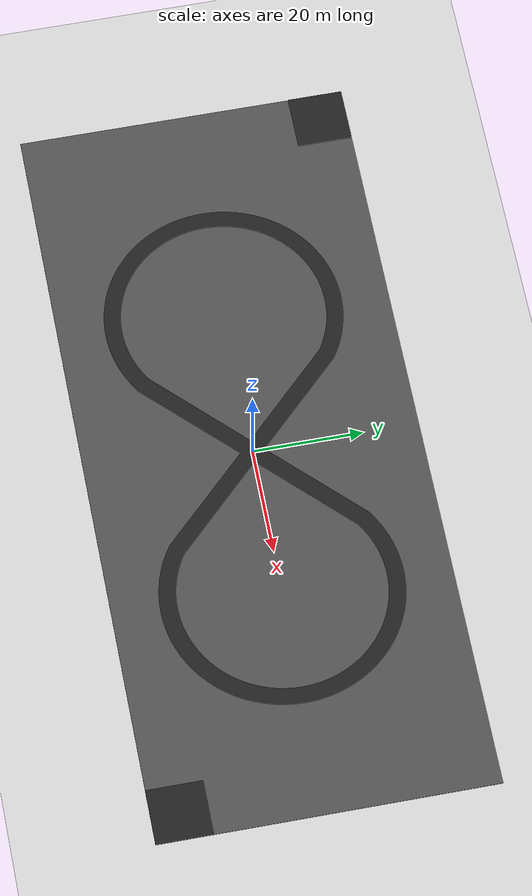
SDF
<sdf version="1.4">
 <world name="default">
  <model name="ground_plane">
   <static>1</static>
   <link name="link">
    <collision name="collision">
     <geometry><plane><normal>0 0 1</normal><size>100 100</size></plane></geometry>
     <surface><friction><ode><mu>100</mu><mu2>50</mu2></ode></friction></surface>
    </collision>
    <visual name="visual">
     <cast_shadows>0</cast_shadows>
     <geometry><plane><normal>0 0 1</normal><size>100 100</size></plane></geometry>
     <material>
      <script><uri>file://media/materials/scripts/gazebo.material</uri><name>Gazebo/Grey</name></script>
     </material>
    </visual>
    <velocity_decay><linear>0</linear><angular>0</angular></velocity_decay>
   </link>
  </model>
  <light name="sun" type="directional">
   <pose>0 0 10 0 -0 0</pose>
   <diffuse>0.8 0.8 0.8 1</diffuse>
   <specular>0.2 0.2 0.2 1</specular>
   <attenuation>
    <range>1000</range>
    <constant>0.9</constant>
    <linear>0.01</linear>
    <quadratic>0.001</quadratic>
   </attenuation>
   <direction>-0.5 0.1 -0.9</direction>
  </light>
  <model name="challenge_1_plane">
   <static>1</static>
   <link name="link">
    <collision name="collision"><geometry><box><size>140 60 0.15</size></box></geometry></collision>
    <visual name="visual">
     <cast_shadows>0</cast_shadows>
     <geometry><box><size>140 60 0.15</size></box></geometry>
     <material>
      <script>
       <uri>model://accessories/challenge_1_plane/materials/scripts</uri>
       <uri>model://accessories/challenge_1_plane/materials/textures</uri>
       <name>vrc/asphalt</name>
      </script>
     </material>
    </visual>
    <velocity_decay><linear>0</linear><angular>0</angular></velocity_decay>
   </link>
  </model>
  <model name="challenge_1_road">
   <link name="base_footprint">
    <inertial>
     <mass>204100</mass>
     <inertia>
      <ixx>1.64481e+08</ixx>
      <ixy>0</ixy>
      <ixz>0</ixz>
      <iyy>1.959e+08</iyy>
      <iyz>0</iyz>
      <izz>3.14195e+07</izz>
     </inertia>
    </inertial>
    <collision name="base_footprint_collision_base_link">
     <pose>0 0 0 1.5708 -0 0</pose>
     <geometry>
      <mesh>
       <scale>0.001 0.001 0.001</scale>
       <uri>model://accessories/challenge_1_road/meshes/challenge_1_road.stl</uri>
      </mesh>
     </geometry>
    </collision>
    <visual name="base_footprint_visual_base_link">
     <pose>0 0 0 1.5708 -0 0</pose>
     <geometry>
      <mesh>
       <scale>0.001 0.001 0.001</scale>
       <uri>model://accessories/challenge_1_road/meshes/challenge_1_road.stl</uri>
      </mesh>
     </geometry>
     <material>
      <script><uri>file://media/materials/scripts/gazebo.material</uri><name>Gazebo/Black</name></script>
     </material>
    </visual>
    <velocity_decay><linear>0</linear><angular>0</angular></velocity_decay>
   </link>
   <pose>-3e-05 8.6e-05 0.224985 -4e-06 1.61559e-27 -2e-06</pose>
   <static>0</static>
  </model>
  <model name="challenge_1_start">
   <static>1</static>
   <link name="link">
    <collision name="collision"><geometry><box><size>10 10 0.15</size></box></geometry></collision>
    <visual name="visual">
     <cast_shadows>0</cast_shadows>
     <geometry><box><size>10 10 0.15</size></box></geometry>
     <material>
      <script><uri>file://media/materials/scripts/gazebo.material</uri><name>Gazebo/Black</name></script>
     </material>
    </visual>
    <velocity_decay><linear>0</linear><angular>0</angular></velocity_decay>
   </link>
   <pose>65 -25 0.15 0 -0 0</pose>
  </model>
  <model name="challenge_1_end">
   <static>1</static>
   <link name="link">
    <collision name="collision"><geometry><box><size>10 10 0.15</size></box></geometry></collision>
    <visual name="visual">
     <cast_shadows>0</cast_shadows>
     <geometry><box><size>10 10 0.15</size></box></geometry>
     <material>
      <script><uri>file://media/materials/scripts/gazebo.material</uri><name>Gazebo/Black</name></script>
     </material>
    </visual>
    <velocity_decay><linear>0</linear><angular>0</angular></velocity_decay>
   </link>
   <pose>-65 25 0.15 0 -0 0</pose>
  </model>
  <physics type="ode">
   <max_step_size>0.001</max_step_size>
   <real_time_factor>1</real_time_factor>
   <real_time_update_rate>1000</real_time_update_rate>
   <gravity>0 0 -9.8</gravity>
  </physics>
  <scene><ambient>0.4 0.4 0.4 1</ambient><background>0.7 0.7 0.7 1</background><shadows>1</shadows></scene>
  <spherical_coordinates>
   <surface_model>EARTH_WGS84</surface_model>
   <latitude_deg>0</latitude_deg>
   <longitude_deg>0</longitude_deg>
   <elevation>0</elevation>
   <heading_deg>0</heading_deg>
  </spherical_coordinates>
 </world>
</sdf>
